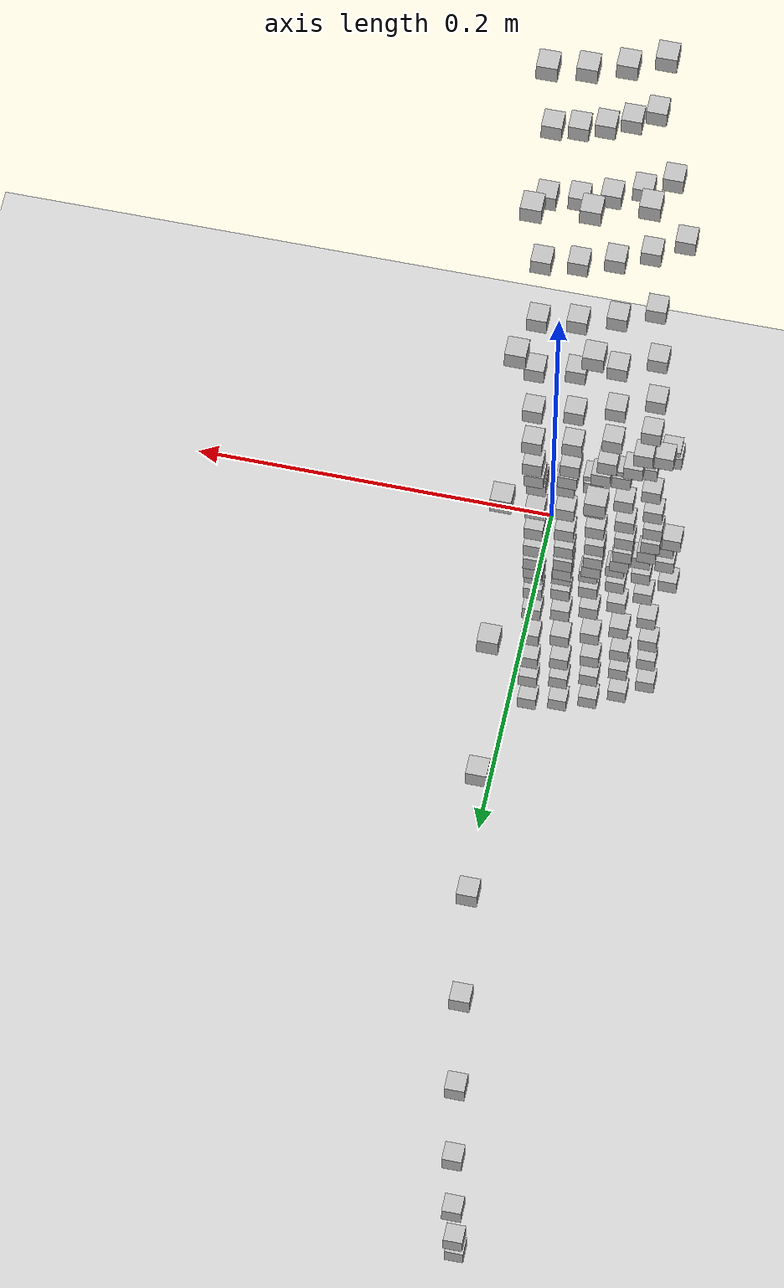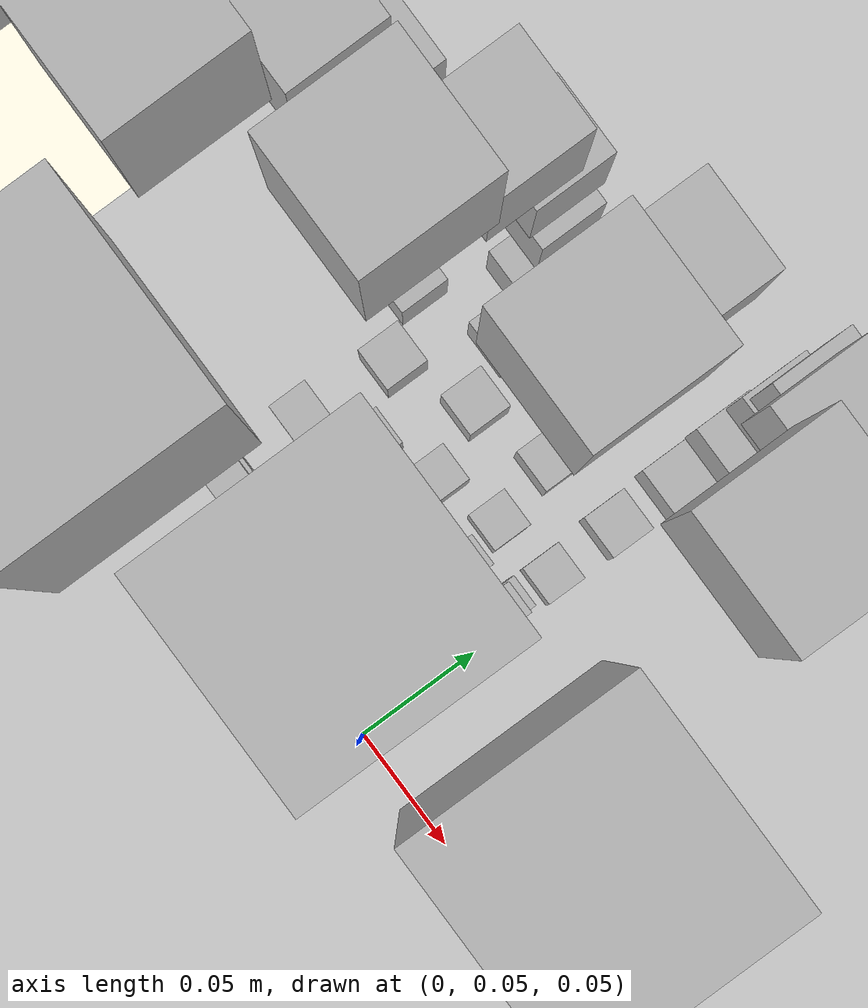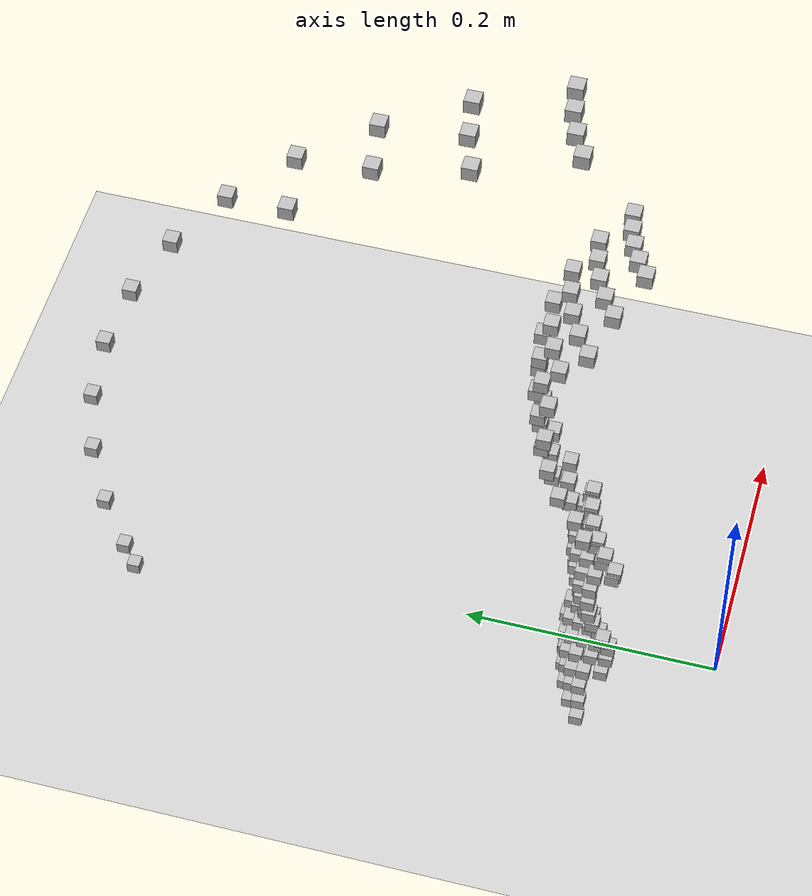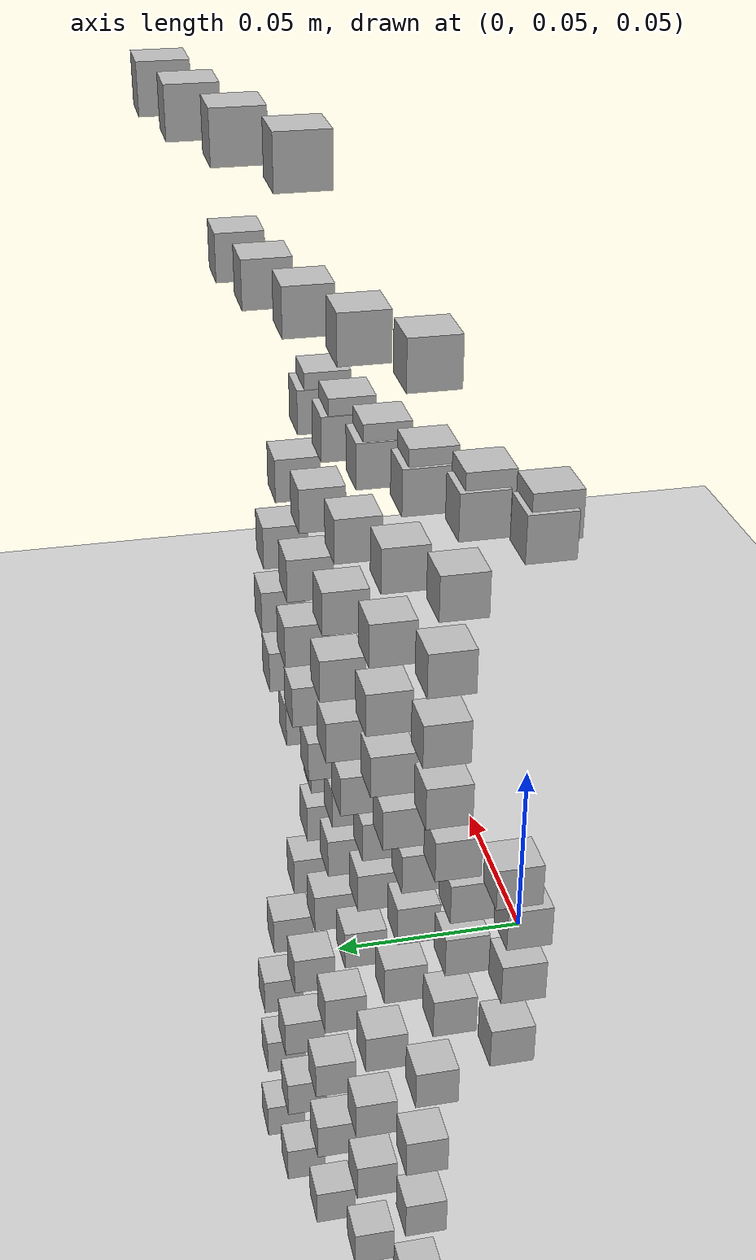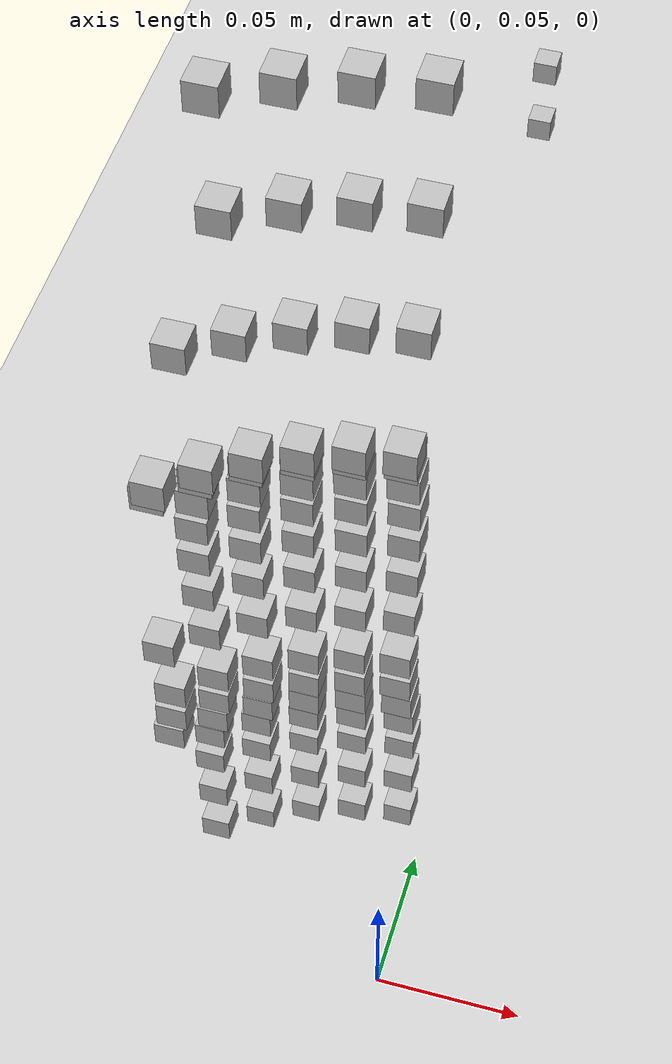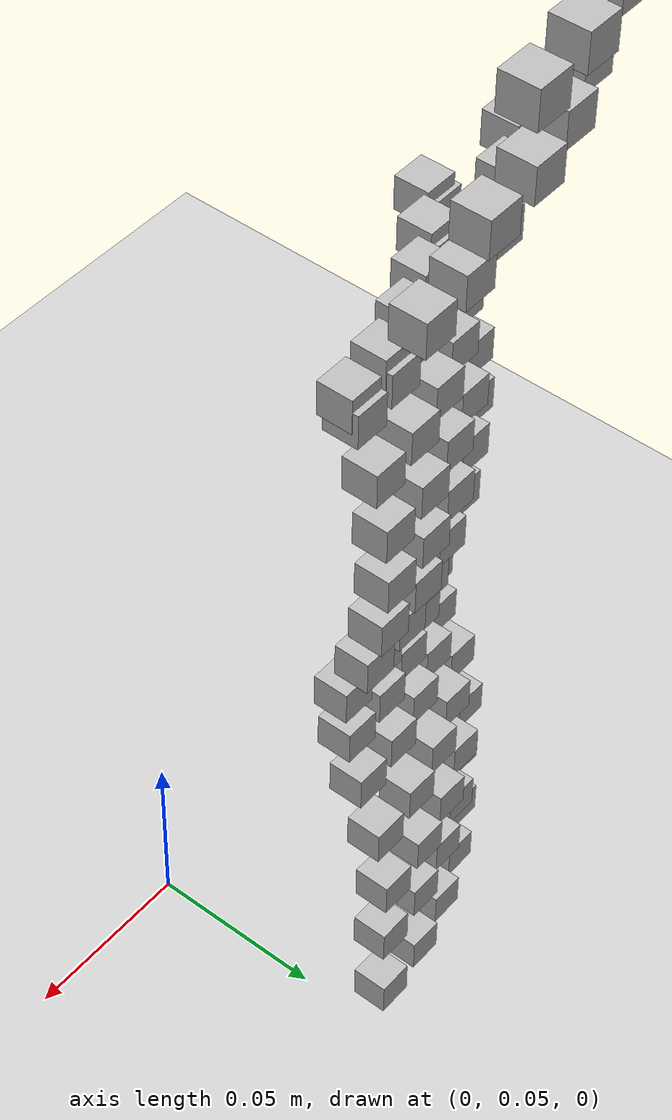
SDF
<sdf version="1.6">
 <world name="default">
  <model name="ground_plane">
   <static>1</static>
   <link name="link">
    <collision name="collision">
     <geometry><plane><normal>0 0 1</normal><size>100 100</size></plane></geometry>
     <surface>
      <contact><collide_bitmask>65535</collide_bitmask></contact>
      <friction><ode><mu>100</mu><mu2>50</mu2></ode></friction>
     </surface>
    </collision>
    <visual name="visual">
     <cast_shadows>0</cast_shadows>
     <geometry><plane><normal>0 0 1</normal><size>100 100</size></plane></geometry>
     <material>
      <script><uri>file://media/materials/scripts/gazebo.material</uri><name>Gazebo/Grey</name></script>
     </material>
    </visual>
   </link>
  </model>
  <model name="box_1685262135_6586115">
   <pose>-0.04006729480239029 0.4579712752214784 0.031024085780011867 0.0 0.0 0.0</pose>
   <static>1</static>
   <link name="box_1685262135_6586115_link">
    <visual name="visual"><geometry><box><size>0.01 0.01 0.01</size></box></geometry></visual>
   </link>
  </model>
  <model name="box_1685262135_659364">
   <pose>-0.0405490793125625 0.463478097371407 0.05746253559996678 0.0 0.0 0.0</pose>
   <static>1</static>
   <link name="box_1685262135_659364_link">
    <visual name="visual"><geometry><box><size>0.01 0.01 0.01</size></box></geometry></visual>
   </link>
  </model>
  <model name="box_1685262135_6600847">
   <pose>-0.04140188021606164 0.47322565630224434 0.11486971929344875 0.0 0.0 0.0</pose>
   <static>1</static>
   <link name="box_1685262135_6600847_link">
    <visual name="visual"><geometry><box><size>0.01 0.01 0.01</size></box></geometry></visual>
   </link>
  </model>
  <model name="box_1685262135_6608076">
   <pose>-0.04162300187774171 0.47575308846052106 0.18152491402812204 0.0 0.0 0.0</pose>
   <static>1</static>
   <link name="box_1685262135_6608076_link">
    <visual name="visual"><geometry><box><size>0.01 0.01 0.01</size></box></geometry></visual>
   </link>
  </model>
  <model name="box_1685262135_6615546">
   <pose>-0.041032772553733214 0.4690067364164804 0.24785452819062248 0.0 0.0 0.0</pose>
   <static>1</static>
   <link name="box_1685262135_6615546_link">
    <visual name="visual"><geometry><box><size>0.01 0.01 0.01</size></box></geometry></visual>
   </link>
  </model>
  <model name="box_1685262135_6622906">
   <pose>-0.03964229772620755 0.4531135364121891 0.31265492137086764 0.0 0.0 0.0</pose>
   <static>1</static>
   <link name="box_1685262135_6622906_link">
    <visual name="visual"><geometry><box><size>0.01 0.01 0.01</size></box></geometry></visual>
   </link>
  </model>
  <model name="box_1685262135_6630473">
   <pose>-0.037482507575038314 0.4284270220213358 0.37450685986133164 0.0 0.0 0.0</pose>
   <static>1</static>
   <link name="box_1685262135_6630473_link">
    <visual name="visual"><geometry><box><size>0.01 0.01 0.01</size></box></geometry></visual>
   </link>
  </model>
  <model name="box_1685262135_6637774">
   <pose>-0.010298524790600002 0.11771267699784224 0.005648136022940203 0.0 0.0 0.0</pose>
   <static>1</static>
   <link name="box_1685262135_6637774_link">
    <visual name="visual"><geometry><box><size>0.01 0.01 0.01</size></box></geometry></visual>
   </link>
  </model>
  <model name="box_1685262135_6637933">
   <pose>-0.02658073853537489 0.11513382768663159 0.005648136022940203 0.0 0.0 0.0</pose>
   <static>1</static>
   <link name="box_1685262135_6637933_link">
    <visual name="visual"><geometry><box><size>0.01 0.01 0.01</size></box></geometry></visual>
   </link>
  </model>
  <model name="box_1685262135_6638107">
   <pose>-0.04234558843970071 0.11031402938228857 0.005648136022940203 0.0 0.0 0.0</pose>
   <static>1</static>
   <link name="box_1685262135_6638107_link">
    <visual name="visual"><geometry><box><size>0.01 0.01 0.01</size></box></geometry></visual>
   </link>
  </model>
  <model name="box_1685262135_6638398">
   <pose>-0.057286229632440656 0.1033470939763679 0.005648136022940203 0.0 0.0 0.0</pose>
   <static>1</static>
   <link name="box_1685262135_6638398_link">
    <visual name="visual"><geometry><box><size>0.01 0.01 0.01</size></box></geometry></visual>
   </link>
  </model>
  <model name="box_1685262135_6638625">
   <pose>-0.07111185952750557 0.09436862494177424 0.005648136022940203 0.0 0.0 0.0</pose>
   <static>1</static>
   <link name="box_1685262135_6638625_link">
    <visual name="visual"><geometry><box><size>0.01 0.01 0.01</size></box></geometry></visual>
   </link>
  </model>
  <model name="box_1685262135_664522">
   <pose>-0.0345881696148887 0.39534458775495823 0.4324042100445494 0.0 0.0 0.0</pose>
   <static>1</static>
   <link name="box_1685262135_664522_link">
    <visual name="visual"><geometry><box><size>0.01 0.01 0.01</size></box></geometry></visual>
   </link>
  </model>
  <model name="box_1685262135_6652482">
   <pose>-0.010245892761072873 0.11711109014754668 0.02920890265866033 0.0 0.0 0.0</pose>
   <static>1</static>
   <link name="box_1685262135_6652482_link">
    <visual name="visual"><geometry><box><size>0.01 0.01 0.01</size></box></geometry></visual>
   </link>
  </model>
  <model name="box_1685262135_6652644">
   <pose>-0.02644489400968868 0.1145454204009682 0.02920890265866033 0.0 0.0 0.0</pose>
   <static>1</static>
   <link name="box_1685262135_6652644_link">
    <visual name="visual"><geometry><box><size>0.01 0.01 0.01</size></box></geometry></visual>
   </link>
  </model>
  <model name="box_1685262135_6652806">
   <pose>-0.04212917547702704 0.10975025433976941 0.02920890265866033 0.0 0.0 0.0</pose>
   <static>1</static>
   <link name="box_1685262135_6652806_link">
    <visual name="visual"><geometry><box><size>0.01 0.01 0.01</size></box></geometry></visual>
   </link>
  </model>
  <model name="box_1685262135_6652966">
   <pose>-0.056993460464931874 0.10281892441691101 0.02920890265866033 0.0 0.0 0.0</pose>
   <static>1</static>
   <link name="box_1685262135_6652966_link">
    <visual name="visual"><geometry><box><size>0.01 0.01 0.01</size></box></geometry></visual>
   </link>
  </model>
  <model name="box_1685262135_6653173">
   <pose>-0.07074843257398723 0.09388634108507046 0.02920890265866033 0.0 0.0 0.0</pose>
   <static>1</static>
   <link name="box_1685262135_6653173_link">
    <visual name="visual"><geometry><box><size>0.01 0.01 0.01</size></box></geometry></visual>
   </link>
  </model>
  <model name="box_1685262135_6660035">
   <pose>-0.031015010711993567 0.35450319460878954 0.4851615351605009 0.0 0.0 0.0</pose>
   <static>1</static>
   <link name="box_1685262135_6660035_link">
    <visual name="visual"><geometry><box><size>0.01 0.01 0.01</size></box></geometry></visual>
   </link>
  </model>
  <model name="box_1685262135_6667254">
   <pose>-0.010269580651487895 0.11738184397393248 0.05028140928145608 0.0 0.0 0.0</pose>
   <static>1</static>
   <link name="box_1685262135_6667254_link">
    <visual name="visual"><geometry><box><size>0.01 0.01 0.01</size></box></geometry></visual>
   </link>
  </model>
  <model name="box_1685262135_6667418">
   <pose>-0.026506033020797442 0.11481024255256339 0.05028140928145608 0.0 0.0 0.0</pose>
   <static>1</static>
   <link name="box_1685262135_6667418_link">
    <visual name="visual"><geometry><box><size>0.01 0.01 0.01</size></box></geometry></visual>
   </link>
  </model>
  <model name="box_1685262135_6667576">
   <pose>-0.0422265756075229 0.11000399035462392 0.05028140928145608 0.0 0.0 0.0</pose>
   <static>1</static>
   <link name="box_1685262135_6667576_link">
    <visual name="visual"><geometry><box><size>0.01 0.01 0.01</size></box></geometry></visual>
   </link>
  </model>
  <model name="box_1685262135_666774">
   <pose>-0.057125225932065746 0.10305663561211616 0.05028140928145608 0.0 0.0 0.0</pose>
   <static>1</static>
   <link name="box_1685262135_666774_link">
    <visual name="visual"><geometry><box><size>0.01 0.01 0.01</size></box></geometry></visual>
   </link>
  </model>
  <model name="box_1685262135_6667898">
   <pose>-0.07091199871282235 0.09410340068260405 0.05028140928145608 0.0 0.0 0.0</pose>
   <static>1</static>
   <link name="box_1685262135_6667898_link">
    <visual name="visual"><geometry><box><size>0.01 0.01 0.01</size></box></geometry></visual>
   </link>
  </model>
  <model name="box_1685262135_6674752">
   <pose>-0.02683541254827552 0.306730168992967 0.5316791207351375 0.0 0.0 0.0</pose>
   <static>1</static>
   <link name="box_1685262135_6674752_link">
    <visual name="visual"><geometry><box><size>0.01 0.01 0.01</size></box></geometry></visual>
   </link>
  </model>
  <model name="box_1685262135_6674907">
   <pose>-0.06926284093482016 0.3000103244935548 0.5316791207351375 0.0 0.0 0.0</pose>
   <static>1</static>
   <link name="box_1685262135_6674907_link">
    <visual name="visual"><geometry><box><size>0.01 0.01 0.01</size></box></geometry></visual>
   </link>
  </model>
  <model name="box_1685262135_6681952">
   <pose>-0.010014069908126295 0.11446134281339194 0.06994559093984248 0.0 0.0 0.0</pose>
   <static>1</static>
   <link name="box_1685262135_6681952_link">
    <visual name="visual"><geometry><box><size>0.01 0.01 0.01</size></box></geometry></visual>
   </link>
  </model>
  <model name="box_1685262135_6682112">
   <pose>-0.02584655368755613 0.11195372373103965 0.06994559093984248 0.0 0.0 0.0</pose>
   <static>1</static>
   <link name="box_1685262135_6682112_link">
    <visual name="visual"><geometry><box><size>0.01 0.01 0.01</size></box></geometry></visual>
   </link>
  </model>
  <model name="box_1685262135_6682267">
   <pose>-0.0411759636994768 0.10726705276173594 0.06994559093984248 0.0 0.0 0.0</pose>
   <static>1</static>
   <link name="box_1685262135_6682267_link">
    <visual name="visual"><geometry><box><size>0.01 0.01 0.01</size></box></geometry></visual>
   </link>
  </model>
  <model name="box_1685262135_668243">
   <pose>-0.055703930414951634 0.10049255062488911 0.06994559093984248 0.0 0.0 0.0</pose>
   <static>1</static>
   <link name="box_1685262135_668243_link">
    <visual name="visual"><geometry><box><size>0.01 0.01 0.01</size></box></geometry></visual>
   </link>
  </model>
  <model name="box_1685262135_668259">
   <pose>-0.06914768348718117 0.09176207529871087 0.06994559093984248 0.0 0.0 0.0</pose>
   <static>1</static>
   <link name="box_1685262135_668259_link">
    <visual name="visual"><geometry><box><size>0.01 0.01 0.01</size></box></geometry></visual>
   </link>
  </model>
  <model name="box_1685262135_6689517">
   <pose>-0.022135631807248094 0.2530114293115131 0.5710245451470004 0.0 0.0 0.0</pose>
   <static>1</static>
   <link name="box_1685262135_6689517_link">
    <visual name="visual"><geometry><box><size>0.01 0.01 0.01</size></box></geometry></visual>
   </link>
  </model>
  <model name="box_1685262135_6689718">
   <pose>-0.057132594555759655 0.24746845495353145 0.5710245451470004 0.0 0.0 0.0</pose>
   <static>1</static>
   <link name="box_1685262135_6689718_link">
    <visual name="visual"><geometry><box><size>0.01 0.01 0.01</size></box></geometry></visual>
   </link>
  </model>
  <model name="box_1685262135_6699405">
   <pose>-0.009521512701766335 0.10883138818259559 0.08776207523471741 0.0 0.0 0.0</pose>
   <static>1</static>
   <link name="box_1685262135_6699405_link">
    <visual name="visual"><geometry><box><size>0.01 0.01 0.01</size></box></geometry></visual>
   </link>
  </model>
  <model name="box_1685262135_6699677">
   <pose>-0.024575251769836902 0.10644711014550763 0.08776207523471741 0.0 0.0 0.0</pose>
   <static>1</static>
   <link name="box_1685262135_6699677_link">
    <visual name="visual"><geometry><box><size>0.01 0.01 0.01</size></box></geometry></visual>
   </link>
  </model>
  <model name="box_1685262135_6699862">
   <pose>-0.03915066151614221 0.10199096019123051 0.08776207523471741 0.0 0.0 0.0</pose>
   <static>1</static>
   <link name="box_1685262135_6699862_link">
    <visual name="visual"><geometry><box><size>0.01 0.01 0.01</size></box></geometry></visual>
   </link>
  </model>
  <model name="box_1685262135_6700094">
   <pose>-0.0529640481692532 0.09554967220982881 0.08776207523471741 0.0 0.0 0.0</pose>
   <static>1</static>
   <link name="box_1685262135_6700094_link">
    <visual name="visual"><geometry><box><size>0.01 0.01 0.01</size></box></geometry></visual>
   </link>
  </model>
  <model name="box_1685262135_670033">
   <pose>-0.06574654987046155 0.087248618545004 0.08776207523471741 0.0 0.0 0.0</pose>
   <static>1</static>
   <link name="box_1685262135_670033_link">
    <visual name="visual"><geometry><box><size>0.01 0.01 0.01</size></box></geometry></visual>
   </link>
  </model>
  <model name="box_1685262135_6700504">
   <pose>-0.07724936976403336 0.07724936976403338 0.08776207523471741 0.0 0.0 0.0</pose>
   <static>1</static>
   <link name="box_1685262135_6700504_link">
    <visual name="visual"><geometry><box><size>0.01 0.01 0.01</size></box></geometry></visual>
   </link>
  </model>
  <model name="box_1685262135_67072">
   <pose>-0.016993928884259008 0.19424149597648704 0.6025204345093003 0.0 0.0 0.0</pose>
   <static>1</static>
   <link name="box_1685262135_67072_link">
    <visual name="visual"><geometry><box><size>0.01 0.01 0.01</size></box></geometry></visual>
   </link>
  </model>
  <model name="box_1685262135_6707366">
   <pose>-0.04386173646671648 0.18998605330979215 0.6025204345093003 0.0 0.0 0.0</pose>
   <static>1</static>
   <link name="box_1685262135_6707366_link">
    <visual name="visual"><geometry><box><size>0.01 0.01 0.01</size></box></geometry></visual>
   </link>
  </model>
  <model name="box_1685262135_6707532">
   <pose>-0.06987582524083516 0.1820327482213548 0.6025204345093003 0.0 0.0 0.0</pose>
   <static>1</static>
   <link name="box_1685262135_6707532_link">
    <visual name="visual"><geometry><box><size>0.01 0.01 0.01</size></box></geometry></visual>
   </link>
  </model>
  <model name="box_1685262135_671544">
   <pose>-0.00920527980267072 0.10521682960607887 0.10333120046485805 0.0 0.0 0.0</pose>
   <static>1</static>
   <link name="box_1685262135_671544_link">
    <visual name="visual"><geometry><box><size>0.01 0.01 0.01</size></box></geometry></visual>
   </link>
  </model>
  <model name="box_1685262135_6715608">
   <pose>-0.023759047101881307 0.10291173931777986 0.10333120046485805 0.0 0.0 0.0</pose>
   <static>1</static>
   <link name="box_1685262135_6715608_link">
    <visual name="visual"><geometry><box><size>0.01 0.01 0.01</size></box></geometry></visual>
   </link>
  </model>
  <model name="box_1685262135_671577">
   <pose>-0.03785037157476934 0.0986035890840287 0.10333120046485805 0.0 0.0 0.0</pose>
   <static>1</static>
   <link name="box_1685262135_671577_link">
    <visual name="visual"><geometry><box><size>0.01 0.01 0.01</size></box></geometry></visual>
   </link>
  </model>
  <model name="box_1685262135_6715932">
   <pose>-0.05120498161911399 0.09237623214867713 0.10333120046485805 0.0 0.0 0.0</pose>
   <static>1</static>
   <link name="box_1685262135_6715932_link">
    <visual name="visual"><geometry><box><size>0.01 0.01 0.01</size></box></geometry></visual>
   </link>
  </model>
  <model name="box_1685262135_6716099">
   <pose>-0.06356294494104592 0.08435087693095819 0.10333120046485805 0.0 0.0 0.0</pose>
   <static>1</static>
   <link name="box_1685262135_6716099_link">
    <visual name="visual"><geometry><box><size>0.01 0.01 0.01</size></box></geometry></visual>
   </link>
  </model>
  <model name="box_1685262135_671626">
   <pose>-0.07468372784147859 0.0746837278414786 0.10333120046485805 0.0 0.0 0.0</pose>
   <static>1</static>
   <link name="box_1685262135_671626_link">
    <visual name="visual"><geometry><box><size>0.01 0.01 0.01</size></box></geometry></visual>
   </link>
  </model>
  <model name="box_1685262135_6722803">
   <pose>-0.011526535570326457 0.13174890443847037 0.6254485040649695 0.0 0.0 0.0</pose>
   <static>1</static>
   <link name="box_1685262135_6722803_link">
    <visual name="visual"><geometry><box><size>0.01 0.01 0.01</size></box></geometry></visual>
   </link>
  </model>
  <model name="box_1685262135_672301">
   <pose>-0.029750263697301414 0.12886254945845294 0.6254485040649695 0.0 0.0 0.0</pose>
   <static>1</static>
   <link name="box_1685262135_672301_link">
    <visual name="visual"><geometry><box><size>0.01 0.01 0.01</size></box></geometry></visual>
   </link>
  </model>
  <model name="box_1685262135_6723204">
   <pose>-0.04739493678183184 0.12346803153220416 0.6254485040649695 0.0 0.0 0.0</pose>
   <static>1</static>
   <link name="box_1685262135_6723204_link">
    <visual name="visual"><geometry><box><size>0.01 0.01 0.01</size></box></geometry></visual>
   </link>
  </model>
  <model name="box_1685262135_67234">
   <pose>-0.06411712133284542 0.11567034881498532 0.6254485040649695 0.0 0.0 0.0</pose>
   <static>1</static>
   <link name="box_1685262135_67234_link">
    <visual name="visual"><geometry><box><size>0.01 0.01 0.01</size></box></geometry></visual>
   </link>
  </model>
  <model name="box_1685262135_6730702">
   <pose>-0.009100284984315954 0.10401673334076497 0.1175214826546544 0.0 0.0 0.0</pose>
   <static>1</static>
   <link name="box_1685262135_6730702_link">
    <visual name="visual"><geometry><box><size>0.01 0.01 0.01</size></box></geometry></visual>
   </link>
  </model>
  <model name="box_1685262135_6730888">
   <pose>-0.023488052967186934 0.10173793476127865 0.1175214826546544 0.0 0.0 0.0</pose>
   <static>1</static>
   <link name="box_1685262135_6730888_link">
    <visual name="visual"><geometry><box><size>0.01 0.01 0.01</size></box></geometry></visual>
   </link>
  </model>
  <model name="box_1685262135_6731057">
   <pose>-0.03741865271631592 0.09747892300684961 0.1175214826546544 0.0 0.0 0.0</pose>
   <static>1</static>
   <link name="box_1685262135_6731057_link">
    <visual name="visual"><geometry><box><size>0.01 0.01 0.01</size></box></geometry></visual>
   </link>
  </model>
  <model name="box_1685262135_673122">
   <pose>-0.050620940953408404 0.09132259489672374 0.1175214826546544 0.0 0.0 0.0</pose>
   <static>1</static>
   <link name="box_1685262135_673122_link">
    <visual name="visual"><geometry><box><size>0.01 0.01 0.01</size></box></geometry></visual>
   </link>
  </model>
  <model name="box_1685262135_6731386">
   <pose>-0.06283795015530971 0.08338877635484516 0.1175214826546544 0.0 0.0 0.0</pose>
   <static>1</static>
   <link name="box_1685262135_6731386_link">
    <visual name="visual"><geometry><box><size>0.01 0.01 0.01</size></box></geometry></visual>
   </link>
  </model>
  <model name="box_1685262135_6731553">
   <pose>-0.07383189013454677 0.07383189013454679 0.1175214826546544 0.0 0.0 0.0</pose>
   <static>1</static>
   <link name="box_1685262135_6731553_link">
    <visual name="visual"><geometry><box><size>0.01 0.01 0.01</size></box></geometry></visual>
   </link>
  </model>
  <model name="box_1685262135_6746016">
   <pose>-0.00960657185290339 0.10980361872892062 0.13255102465284446 0.0 0.0 0.0</pose>
   <static>1</static>
   <link name="box_1685262135_6746016_link">
    <visual name="visual"><geometry><box><size>0.01 0.01 0.01</size></box></geometry></visual>
   </link>
  </model>
  <model name="box_1685262135_6746247">
   <pose>-0.024794791471142344 0.1073980410651597 0.13255102465284446 0.0 0.0 0.0</pose>
   <static>1</static>
   <link name="box_1685262135_6746247_link">
    <visual name="visual"><geometry><box><size>0.01 0.01 0.01</size></box></geometry></visual>
   </link>
  </model>
  <model name="box_1685262135_6746418">
   <pose>-0.03950040867705283 0.10290208269552649 0.13255102465284446 0.0 0.0 0.0</pose>
   <static>1</static>
   <link name="box_1685262135_6746418_link">
    <visual name="visual"><geometry><box><size>0.01 0.01 0.01</size></box></geometry></visual>
   </link>
  </model>
  <model name="box_1685262135_674658">
   <pose>-0.053437195359113385 0.09640325233560906 0.13255102465284446 0.0 0.0 0.0</pose>
   <static>1</static>
   <link name="box_1685262135_674658_link">
    <visual name="visual"><geometry><box><size>0.01 0.01 0.01</size></box></geometry></visual>
   </link>
  </model>
  <model name="box_1685262135_674674">
   <pose>-0.06633388781741761 0.08802804232605321 0.13255102465284446 0.0 0.0 0.0</pose>
   <static>1</static>
   <link name="box_1685262135_674674_link">
    <visual name="visual"><geometry><box><size>0.01 0.01 0.01</size></box></geometry></visual>
   </link>
  </model>
  <model name="box_1685262135_67469">
   <pose>-0.07793946660303482 0.07793946660303483 0.13255102465284446 0.0 0.0 0.0</pose>
   <static>1</static>
   <link name="box_1685262135_67469_link">
    <visual name="visual"><geometry><box><size>0.01 0.01 0.01</size></box></geometry></visual>
   </link>
  </model>
  <model name="box_1685262135_676157">
   <pose>-0.009923693783030207 0.11342833897662277 0.14825398363050718 0.0 0.0 0.0</pose>
   <static>1</static>
   <link name="box_1685262135_676157_link">
    <visual name="visual"><geometry><box><size>0.01 0.01 0.01</size></box></geometry></visual>
   </link>
  </model>
  <model name="box_1685262135_676173">
   <pose>-0.02561329074943007 0.11094335094218198 0.14825398363050718 0.0 0.0 0.0</pose>
   <static>1</static>
   <link name="box_1685262135_676173_link">
    <visual name="visual"><geometry><box><size>0.01 0.01 0.01</size></box></geometry></visual>
   </link>
  </model>
  <model name="box_1685262135_6761937">
   <pose>-0.040804354146078727 0.10629897677784288 0.14825398363050718 0.0 0.0 0.0</pose>
   <static>1</static>
   <link name="box_1685262135_6761937_link">
    <visual name="visual"><geometry><box><size>0.01 0.01 0.01</size></box></geometry></visual>
   </link>
  </model>
  <model name="box_1685262135_6762145">
   <pose>-0.05520120720353885 0.09958561394381703 0.14825398363050718 0.0 0.0 0.0</pose>
   <static>1</static>
   <link name="box_1685262135_6762145_link">
    <visual name="visual"><geometry><box><size>0.01 0.01 0.01</size></box></geometry></visual>
   </link>
  </model>
  <model name="box_1685262135_6762307">
   <pose>-0.06852363155322463 0.09093393041133166 0.14825398363050718 0.0 0.0 0.0</pose>
   <static>1</static>
   <link name="box_1685262135_6762307_link">
    <visual name="visual"><geometry><box><size>0.01 0.01 0.01</size></box></geometry></visual>
   </link>
  </model>
  <model name="box_1685262135_6770127">
   <pose>-0.010045276111791181 0.11481803135345223 0.16428489958480497 0.0 0.0 0.0</pose>
   <static>1</static>
   <link name="box_1685262135_6770127_link">
    <visual name="visual"><geometry><box><size>0.01 0.01 0.01</size></box></geometry></visual>
   </link>
  </model>
  <model name="box_1685262135_677029">
   <pose>-0.02592709764478922 0.11230259793861416 0.16428489958480497 0.0 0.0 0.0</pose>
   <static>1</static>
   <link name="box_1685262135_677029_link">
    <visual name="visual"><geometry><box><size>0.01 0.01 0.01</size></box></geometry></visual>
   </link>
  </model>
  <model name="box_1685262135_6770544">
   <pose>-0.04130427771376795 0.10760132219721277 0.16428489958480497 0.0 0.0 0.0</pose>
   <static>1</static>
   <link name="box_1685262135_6770544_link">
    <visual name="visual"><geometry><box><size>0.01 0.01 0.01</size></box></geometry></visual>
   </link>
  </model>
  <model name="box_1685262135_6770732">
   <pose>-0.05587751699996769 0.10080570911393255 0.16428489958480497 0.0 0.0 0.0</pose>
   <static>1</static>
   <link name="box_1685262135_6770732_link">
    <visual name="visual"><geometry><box><size>0.01 0.01 0.01</size></box></geometry></visual>
   </link>
  </model>
  <model name="box_1685262135_6770897">
   <pose>-0.0693631639774966 0.0920480275675442 0.16428489958480497 0.0 0.0 0.0</pose>
   <static>1</static>
   <link name="box_1685262135_6770897_link">
    <visual name="visual"><geometry><box><size>0.01 0.01 0.01</size></box></geometry></visual>
   </link>
  </model>
  <model name="box_1685262135_6777518">
   <pose>-0.009972215780866527 0.11398294794972637 0.18035913689155542 0.0 0.0 0.0</pose>
   <static>1</static>
   <link name="box_1685262135_6777518_link">
    <visual name="visual"><geometry><box><size>0.01 0.01 0.01</size></box></geometry></visual>
   </link>
  </model>
  <model name="box_1685262135_677778">
   <pose>-0.02573852718512603 0.11148580954198037 0.18035913689155542 0.0 0.0 0.0</pose>
   <static>1</static>
   <link name="box_1685262135_677778_link">
    <visual name="visual"><geometry><box><size>0.01 0.01 0.01</size></box></geometry></visual>
   </link>
  </model>
  <model name="box_1685262135_6777942">
   <pose>-0.04100386743486784 0.1068187266647285 0.18035913689155542 0.0 0.0 0.0</pose>
   <static>1</static>
   <link name="box_1685262135_6777942_link">
    <visual name="visual"><geometry><box><size>0.01 0.01 0.01</size></box></geometry></visual>
   </link>
  </model>
  <model name="box_1685262135_6778162">
   <pose>-0.05547111404619783 0.10007253877744837 0.18035913689155542 0.0 0.0 0.0</pose>
   <static>1</static>
   <link name="box_1685262135_6778162_link">
    <visual name="visual"><geometry><box><size>0.01 0.01 0.01</size></box></geometry></visual>
   </link>
  </model>
  <model name="box_1685262135_677837">
   <pose>-0.06885867852007563 0.09137855275369089 0.18035913689155542 0.0 0.0 0.0</pose>
   <static>1</static>
   <link name="box_1685262135_677837_link">
    <visual name="visual"><geometry><box><size>0.01 0.01 0.01</size></box></geometry></visual>
   </link>
  </model>
  <model name="box_1685262135_6785142">
   <pose>-0.009704658331917268 0.11092475231424294 0.19617448160834577 0.0 0.0 0.0</pose>
   <static>1</static>
   <link name="box_1685262135_6785142_link">
    <visual name="visual"><geometry><box><size>0.01 0.01 0.01</size></box></geometry></visual>
   </link>
  </model>
  <model name="box_1685262135_6785305">
   <pose>-0.02504795501694486 0.10849461285605153 0.19617448160834577 0.0 0.0 0.0</pose>
   <static>1</static>
   <link name="box_1685262135_6785305_link">
    <visual name="visual"><geometry><box><size>0.01 0.01 0.01</size></box></geometry></visual>
   </link>
  </model>
  <model name="box_1685262135_6785467">
   <pose>-0.03990372174919421 0.10395274916941005 0.19617448160834577 0.0 0.0 0.0</pose>
   <static>1</static>
   <link name="box_1685262135_6785467_link">
    <visual name="visual"><geometry><box><size>0.01 0.01 0.01</size></box></geometry></visual>
   </link>
  </model>
  <model name="box_1685262135_6785653">
   <pose>-0.05398280792740621 0.0973875634646856 0.19617448160834577 0.0 0.0 0.0</pose>
   <static>1</static>
   <link name="box_1685262135_6785653_link">
    <visual name="visual"><geometry><box><size>0.01 0.01 0.01</size></box></geometry></visual>
   </link>
  </model>
  <model name="box_1685262135_678582">
   <pose>-0.06701118015384516 0.08892683961383258 0.19617448160834577 0.0 0.0 0.0</pose>
   <static>1</static>
   <link name="box_1685262135_678582_link">
    <visual name="visual"><geometry><box><size>0.01 0.01 0.01</size></box></geometry></visual>
   </link>
  </model>
  <model name="box_1685262135_6792436">
   <pose>-0.009246611461319377 0.1056892526261929 0.2113835132273968 0.0 0.0 0.0</pose>
   <static>1</static>
   <link name="box_1685262135_6792436_link">
    <visual name="visual"><geometry><box><size>0.01 0.01 0.01</size></box></geometry></visual>
   </link>
  </model>
  <model name="box_1685262135_6792595">
   <pose>-0.023865725100343387 0.10337381249443528 0.2113835132273968 0.0 0.0 0.0</pose>
   <static>1</static>
   <link name="box_1685262135_6792595_link">
    <visual name="visual"><geometry><box><size>0.01 0.01 0.01</size></box></geometry></visual>
   </link>
  </model>
  <model name="box_1685262135_6792758">
   <pose>-0.0380203195471492 0.09904631868844237 0.2113835132273968 0.0 0.0 0.0</pose>
   <static>1</static>
   <link name="box_1685262135_6792758_link">
    <visual name="visual"><geometry><box><size>0.01 0.01 0.01</size></box></geometry></visual>
   </link>
  </model>
  <model name="box_1685262135_679292">
   <pose>-0.051434891721442215 0.09279100095269659 0.2113835132273968 0.0 0.0 0.0</pose>
   <static>1</static>
   <link name="box_1685262135_679292_link">
    <visual name="visual"><geometry><box><size>0.01 0.01 0.01</size></box></geometry></visual>
   </link>
  </model>
  <model name="box_1685262135_6793163">
   <pose>-0.06384834223469955 0.08472961193160573 0.2113835132273968 0.0 0.0 0.0</pose>
   <static>1</static>
   <link name="box_1685262135_6793163_link">
    <visual name="visual"><geometry><box><size>0.01 0.01 0.01</size></box></geometry></visual>
   </link>
  </model>
  <model name="box_1685262135_6793404">
   <pose>-0.07501905739277127 0.07501905739277129 0.2113835132273968 0.0 0.0 0.0</pose>
   <static>1</static>
   <link name="box_1685262135_6793404_link">
    <visual name="visual"><geometry><box><size>0.01 0.01 0.01</size></box></geometry></visual>
   </link>
  </model>
  <model name="box_1685262135_6799948">
   <pose>-0.009103875938196377 0.10405777813143502 0.21508165296930842 0.0 0.0 0.0</pose>
   <static>1</static>
   <link name="box_1685262135_6799948_link">
    <visual name="visual"><geometry><box><size>0.01 0.01 0.01</size></box></geometry></visual>
   </link>
  </model>
  <model name="box_1685262135_6800113">
   <pose>-0.023497321304946847 0.10177808034268045 0.21508165296930842 0.0 0.0 0.0</pose>
   <static>1</static>
   <link name="box_1685262135_6800113_link">
    <visual name="visual"><geometry><box><size>0.01 0.01 0.01</size></box></geometry></visual>
   </link>
  </model>
  <model name="box_1685262135_680028">
   <pose>-0.03743341804030341 0.09751738799090609 0.21508165296930842 0.0 0.0 0.0</pose>
   <static>1</static>
   <link name="box_1685262135_680028_link">
    <visual name="visual"><geometry><box><size>0.01 0.01 0.01</size></box></geometry></visual>
   </link>
  </model>
  <model name="box_1685262135_680044">
   <pose>-0.05064091587338736 0.0913586306062735 0.21508165296930842 0.0 0.0 0.0</pose>
   <static>1</static>
   <link name="box_1685262135_680044_link">
    <visual name="visual"><geometry><box><size>0.01 0.01 0.01</size></box></geometry></visual>
   </link>
  </model>
  <model name="box_1685262135_680062">
   <pose>-0.06286274588218387 0.08342168139579183 0.21508165296930842 0.0 0.0 0.0</pose>
   <static>1</static>
   <link name="box_1685262135_680062_link">
    <visual name="visual"><geometry><box><size>0.01 0.01 0.01</size></box></geometry></visual>
   </link>
  </model>
  <model name="box_1685262135_6800783">
   <pose>-0.07386102404769726 0.07386102404769727 0.21508165296930842 0.0 0.0 0.0</pose>
   <static>1</static>
   <link name="box_1685262135_6800783_link">
    <visual name="visual"><geometry><box><size>0.01 0.01 0.01</size></box></geometry></visual>
   </link>
  </model>
  <model name="box_1685262135_6807275">
   <pose>-0.01065580764573511 0.12179643871891643 0.24636117300793503 0.0 0.0 0.0</pose>
   <static>1</static>
   <link name="box_1685262135_6807275_link">
    <visual name="visual"><geometry><box><size>0.01 0.01 0.01</size></box></geometry></visual>
   </link>
  </model>
  <model name="box_1685262135_680744">
   <pose>-0.027502894120627914 0.11912812235649146 0.24636117300793503 0.0 0.0 0.0</pose>
   <static>1</static>
   <link name="box_1685262135_680744_link">
    <visual name="visual"><geometry><box><size>0.01 0.01 0.01</size></box></geometry></visual>
   </link>
  </model>
  <model name="box_1685262135_68076">
   <pose>-0.043814668045541134 0.11414111259862814 0.24636117300793503 0.0 0.0 0.0</pose>
   <static>1</static>
   <link name="box_1685262135_68076_link">
    <visual name="visual"><geometry><box><size>0.01 0.01 0.01</size></box></geometry></visual>
   </link>
  </model>
  <model name="box_1685262135_680776">
   <pose>-0.05927363929539408 0.10693247591762377 0.24636117300793503 0.0 0.0 0.0</pose>
   <static>1</static>
   <link name="box_1685262135_680776_link">
    <visual name="visual"><geometry><box><size>0.01 0.01 0.01</size></box></geometry></visual>
   </link>
  </model>
  <model name="box_1685262135_6807919">
   <pose>-0.07357891657912757 0.09764252022677136 0.24636117300793503 0.0 0.0 0.0</pose>
   <static>1</static>
   <link name="box_1685262135_6807919_link">
    <visual name="visual"><geometry><box><size>0.01 0.01 0.01</size></box></geometry></visual>
   </link>
  </model>
  <model name="box_1685262135_6814775">
   <pose>-0.011816544080711927 0.13506371688042218 0.2798396861917631 0.0 0.0 0.0</pose>
   <static>1</static>
   <link name="box_1685262135_6814775_link">
    <visual name="visual"><geometry><box><size>0.01 0.01 0.01</size></box></geometry></visual>
   </link>
  </model>
  <model name="box_1685262135_6814942">
   <pose>-0.030498782591446894 0.13210474098988992 0.2798396861917631 0.0 0.0 0.0</pose>
   <static>1</static>
   <link name="box_1685262135_6814942_link">
    <visual name="visual"><geometry><box><size>0.01 0.01 0.01</size></box></geometry></visual>
   </link>
  </model>
  <model name="box_1685262135_6815107">
   <pose>-0.04858739699089041 0.12657449658290512 0.2798396861917631 0.0 0.0 0.0</pose>
   <static>1</static>
   <link name="box_1685262135_6815107_link">
    <visual name="visual"><geometry><box><size>0.01 0.01 0.01</size></box></geometry></visual>
   </link>
  </model>
  <model name="box_1685262135_681527">
   <pose>-0.06573031297525114 0.11858062357628998 0.2798396861917631 0.0 0.0 0.0</pose>
   <static>1</static>
   <link name="box_1685262135_681527_link">
    <visual name="visual"><geometry><box><size>0.01 0.01 0.01</size></box></geometry></visual>
   </link>
  </model>
  <model name="box_1685262135_6822138">
   <pose>-0.012557852839414406 0.1435369147648866 0.314821790288947 0.0 0.0 0.0</pose>
   <static>1</static>
   <link name="box_1685262135_6822138_link">
    <visual name="visual"><geometry><box><size>0.01 0.01 0.01</size></box></geometry></visual>
   </link>
  </model>
  <model name="box_1685262135_68223">
   <pose>-0.03241211820889758 0.14039230805628616 0.314821790288947 0.0 0.0 0.0</pose>
   <static>1</static>
   <link name="box_1685262135_68223_link">
    <visual name="visual"><geometry><box><size>0.01 0.01 0.01</size></box></geometry></visual>
   </link>
  </model>
  <model name="box_1685262135_6822457">
   <pose>-0.051635518565682645 0.13451512476525362 0.314821790288947 0.0 0.0 0.0</pose>
   <static>1</static>
   <link name="box_1685262135_6822457_link">
    <visual name="visual"><geometry><box><size>0.01 0.01 0.01</size></box></geometry></visual>
   </link>
  </model>
  <model name="box_1685262135_6822615">
   <pose>-0.06985389228811849 0.12601975757935202 0.314821790288947 0.0 0.0 0.0</pose>
   <static>1</static>
   <link name="box_1685262135_6822615_link">
    <visual name="visual"><geometry><box><size>0.01 0.01 0.01</size></box></geometry></visual>
   </link>
  </model>
  <model name="box_1685262135_6829457">
   <pose>-0.012867896277265603 0.14708072747565373 0.3506667056619606 0.0 0.0 0.0</pose>
   <static>1</static>
   <link name="box_1685262135_6829457_link">
    <visual name="visual"><geometry><box><size>0.01 0.01 0.01</size></box></geometry></visual>
   </link>
  </model>
  <model name="box_1685262135_682962">
   <pose>-0.03321234772950364 0.1438584829186813 0.3506667056619606 0.0 0.0 0.0</pose>
   <static>1</static>
   <link name="box_1685262135_682962_link">
    <visual name="visual"><geometry><box><size>0.01 0.01 0.01</size></box></geometry></visual>
   </link>
  </model>
  <model name="box_1685262135_6829782">
   <pose>-0.05291035861167256 0.1378361966282957 0.3506667056619606 0.0 0.0 0.0</pose>
   <static>1</static>
   <link name="box_1685262135_6829782_link">
    <visual name="visual"><geometry><box><size>0.01 0.01 0.01</size></box></geometry></visual>
   </link>
  </model>
  <model name="box_1685262135_6829948">
   <pose>-0.07157852954810612 0.12913108555689015 0.3506667056619606 0.0 0.0 0.0</pose>
   <static>1</static>
   <link name="box_1685262135_6829948_link">
    <visual name="visual"><geometry><box><size>0.01 0.01 0.01</size></box></geometry></visual>
   </link>
  </model>
  <model name="box_1685262135_6836705">
   <pose>-0.012739485179901179 0.14561298191652336 0.38661397693110494 0.0 0.0 0.0</pose>
   <static>1</static>
   <link name="box_1685262135_6836705_link">
    <visual name="visual"><geometry><box><size>0.01 0.01 0.01</size></box></geometry></visual>
   </link>
  </model>
  <model name="box_1685262135_6836865">
   <pose>-0.03288091561922705 0.14242289272905514 0.38661397693110494 0.0 0.0 0.0</pose>
   <static>1</static>
   <link name="box_1685262135_6836865_link">
    <visual name="visual"><geometry><box><size>0.01 0.01 0.01</size></box></geometry></visual>
   </link>
  </model>
  <model name="box_1685262135_6837025">
   <pose>-0.05238235643751189 0.13646070393825518 0.38661397693110494 0.0 0.0 0.0</pose>
   <static>1</static>
   <link name="box_1685262135_6837025_link">
    <visual name="visual"><geometry><box><size>0.01 0.01 0.01</size></box></geometry></visual>
   </link>
  </model>
  <model name="box_1685262135_6837187">
   <pose>-0.07086423427178785 0.1278424627670472 0.38661397693110494 0.0 0.0 0.0</pose>
   <static>1</static>
   <link name="box_1685262135_6837187_link">
    <visual name="visual"><geometry><box><size>0.01 0.01 0.01</size></box></geometry></visual>
   </link>
  </model>
  <model name="box_1685262135_6844745">
   <pose>-0.012174644995387198 0.1391568290648272 0.42204584917069304 0.0 0.0 0.0</pose>
   <static>1</static>
   <link name="box_1685262135_6844745_link">
    <visual name="visual"><geometry><box><size>0.01 0.01 0.01</size></box></geometry></visual>
   </link>
  </model>
  <model name="box_1685262135_6844907">
   <pose>-0.03142304960791804 0.1361081812731313 0.42204584917069304 0.0 0.0 0.0</pose>
   <static>1</static>
   <link name="box_1685262135_6844907_link">
    <visual name="visual"><geometry><box><size>0.01 0.01 0.01</size></box></geometry></visual>
   </link>
  </model>
  <model name="box_1685262135_684507">
   <pose>-0.050059840303019965 0.13041034255371536 0.42204584917069304 0.0 0.0 0.0</pose>
   <static>1</static>
   <link name="box_1685262135_684507_link">
    <visual name="visual"><geometry><box><size>0.01 0.01 0.01</size></box></geometry></visual>
   </link>
  </model>
  <model name="box_1685262135_6845248">
   <pose>-0.06772227314884795 0.12217421485605738 0.42204584917069304 0.0 0.0 0.0</pose>
   <static>1</static>
   <link name="box_1685262135_6845248_link">
    <visual name="visual"><geometry><box><size>0.01 0.01 0.01</size></box></geometry></visual>
   </link>
  </model>
  <model name="box_1685262135_6852603">
   <pose>-0.011184930419313914 0.12784433969550432 0.45627229759588134 0.0 0.0 0.0</pose>
   <static>1</static>
   <link name="box_1685262135_6852603_link">
    <visual name="visual"><geometry><box><size>0.01 0.01 0.01</size></box></geometry></visual>
   </link>
  </model>
  <model name="box_1685262135_6852765">
   <pose>-0.028868572640958122 0.12504352591932985 0.45627229759588134 0.0 0.0 0.0</pose>
   <static>1</static>
   <link name="box_1685262135_6852765_link">
    <visual name="visual"><geometry><box><size>0.01 0.01 0.01</size></box></geometry></visual>
   </link>
  </model>
  <model name="box_1685262135_685293">
   <pose>-0.04599032093366081 0.1198088821460382 0.45627229759588134 0.0 0.0 0.0</pose>
   <static>1</static>
   <link name="box_1685262135_685293_link">
    <visual name="visual"><geometry><box><size>0.01 0.01 0.01</size></box></geometry></visual>
   </link>
  </model>
  <model name="box_1685262135_6853094">
   <pose>-0.062216919942604455 0.11224229476235748 0.45627229759588134 0.0 0.0 0.0</pose>
   <static>1</static>
   <link name="box_1685262135_6853094_link">
    <visual name="visual"><geometry><box><size>0.01 0.01 0.01</size></box></geometry></visual>
   </link>
  </model>
  <model name="box_1685262135_685331">
   <pose>-0.07723253737556282 0.10249103878484539 0.45627229759588134 0.0 0.0 0.0</pose>
   <static>1</static>
   <link name="box_1685262135_685331_link">
    <visual name="visual"><geometry><box><size>0.01 0.01 0.01</size></box></geometry></visual>
   </link>
  </model>
  <model name="box_1685262135_686041">
   <pose>-0.00978813524780046 0.11187889782886105 0.4885508417419748 0.0 0.0 0.0</pose>
   <static>1</static>
   <link name="box_1685262135_686041_link">
    <visual name="visual"><geometry><box><size>0.01 0.01 0.01</size></box></geometry></visual>
   </link>
  </model>
  <model name="box_1685262135_6860578">
   <pose>-0.02526341093125755 0.10942785495086879 0.4885508417419748 0.0 0.0 0.0</pose>
   <static>1</static>
   <link name="box_1685262135_6860578_link">
    <visual name="visual"><geometry><box><size>0.01 0.01 0.01</size></box></geometry></visual>
   </link>
  </model>
  <model name="box_1685262135_686074">
   <pose>-0.04024696305764177 0.10484692334859799 0.4885508417419748 0.0 0.0 0.0</pose>
   <static>1</static>
   <link name="box_1685262135_686074_link">
    <visual name="visual"><geometry><box><size>0.01 0.01 0.01</size></box></geometry></visual>
   </link>
  </model>
  <model name="box_1685262135_68609">
   <pose>-0.054447153828350914 0.09822526564495439 0.4885508417419748 0.0 0.0 0.0</pose>
   <static>1</static>
   <link name="box_1685262135_68609_link">
    <visual name="visual"><geometry><box><size>0.01 0.01 0.01</size></box></geometry></visual>
   </link>
  </model>
  <model name="box_1685262135_6861062">
   <pose>-0.06758759268251076 0.08969176487511538 0.4885508417419748 0.0 0.0 0.0</pose>
   <static>1</static>
   <link name="box_1685262135_6861062_link">
    <visual name="visual"><geometry><box><size>0.01 0.01 0.01</size></box></geometry></visual>
   </link>
  </model>
  <model name="box_1685262135_6868553">
   <pose>-0.008017216322828967 0.09163720189248699 0.5182674726656538 0.0 0.0 0.0</pose>
   <static>1</static>
   <link name="box_1685262135_6868553_link">
    <visual name="visual"><geometry><box><size>0.01 0.01 0.01</size></box></geometry></visual>
   </link>
  </model>
  <model name="box_1685262135_6868792">
   <pose>-0.020692626875372204 0.08962961408623871 0.5182674726656538 0.0 0.0 0.0</pose>
   <static>1</static>
   <link name="box_1685262135_6868792_link">
    <visual name="visual"><geometry><box><size>0.01 0.01 0.01</size></box></geometry></visual>
   </link>
  </model>
  <model name="box_1685262135_6868968">
   <pose>-0.03296527898330057 0.0858774877939767 0.5182674726656538 0.0 0.0 0.0</pose>
   <static>1</static>
   <link name="box_1685262135_6868968_link">
    <visual name="visual"><geometry><box><size>0.01 0.01 0.01</size></box></geometry></visual>
   </link>
  </model>
  <model name="box_1685262135_6869133">
   <pose>-0.04459629943326804 0.08045385388599949 0.5182674726656538 0.0 0.0 0.0</pose>
   <static>1</static>
   <link name="box_1685262135_6869133_link">
    <visual name="visual"><geometry><box><size>0.01 0.01 0.01</size></box></geometry></visual>
   </link>
  </model>
  <model name="box_1685262135_6869295">
   <pose>-0.05535930364230569 0.07346427722703365 0.5182674726656538 0.0 0.0 0.0</pose>
   <static>1</static>
   <link name="box_1685262135_6869295_link">
    <visual name="visual"><geometry><box><size>0.01 0.01 0.01</size></box></geometry></visual>
   </link>
  </model>
 </world>
</sdf>
